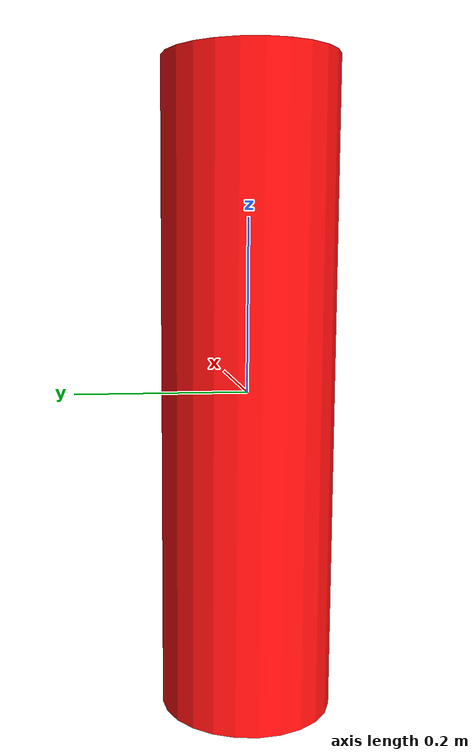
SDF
<?xml version="1.0"?>
<!--
  视觉跟随用的红色圆柱目标。

  【尺寸故意偏细】半径 0.10m：在车前方约 1m 处，画面里宽度大约
  0.15~0.20（小于控制器 desired_width=0.25），这样才会触发前进；
  若做成粗柱贴脸，车只会原地转向、几乎不往前开。

  static=true：位姿由 follow_target_mover 通过 gz set_pose 驱动。
-->
<sdf version="1.9">
  <model name="follow_target">
    <static>true</static>
    <pose>0 0 0 0 0 0</pose>
    <link name="body">
      <visual name="visual">
        <geometry>
          <cylinder>
            <radius>0.10</radius>
            <length>0.75</length>
          </cylinder>
        </geometry>
        <material>
          <ambient>1.0 0.0 0.0 1</ambient>
          <diffuse>1.0 0.05 0.05 1</diffuse>
          <specular>0.05 0.05 0.05 1</specular>
          <emissive>0.85 0.0 0.0 1</emissive>
        </material>
      </visual>
      <collision name="collision">
        <geometry>
          <cylinder>
            <radius>0.10</radius>
            <length>0.75</length>
          </cylinder>
        </geometry>
      </collision>
    </link>
  </model>
</sdf>
